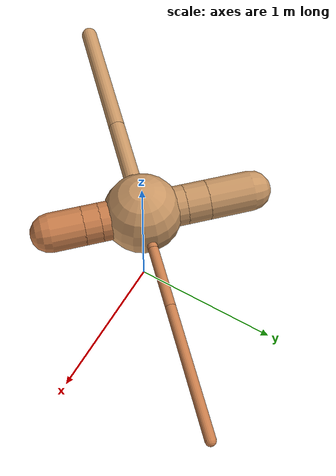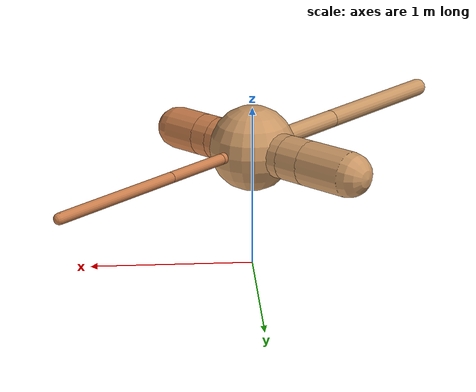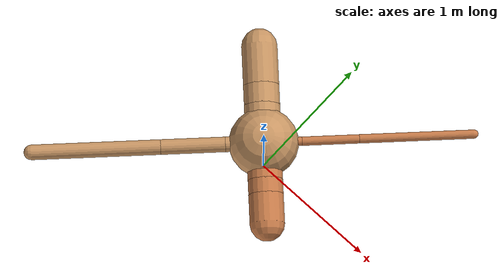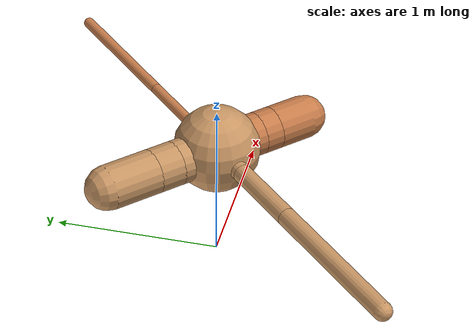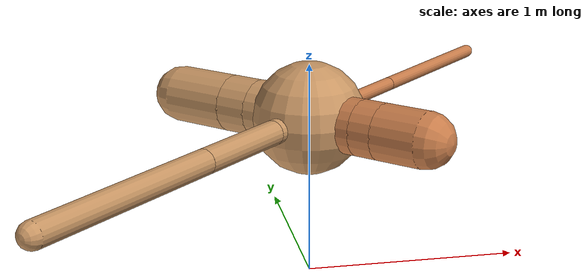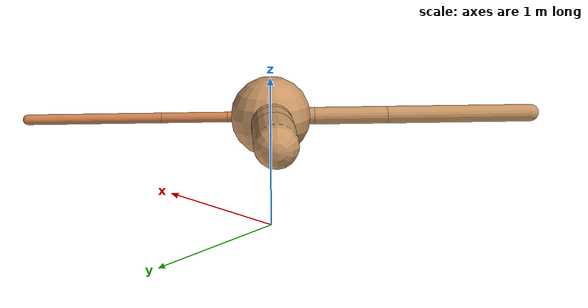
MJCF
<?xml version="1.0" ?>
<mujoco model="ant">

	<compiler angle="degree" coordinate="local" inertiafromgeom="true"/>

	<option integrator="RK4" timestep="0.01"/>

	<custom>

		<numeric data="0.0 0.0 0.55 1.0 0.0 0.0 0.0 0.0 1.0 0.0 -1.0 0.0 -1.0 0.0 1.0" name="init_qpos"/>

	</custom>

	<default>

		<joint armature="1" damping="1" limited="true"/>

		<geom conaffinity="0" condim="3" density="5.0" friction="1.5 0.1 0.1" margin="0.01" rgba="0.8 0.6 0.4 1"/>

	</default>

	<worldbody>

		<body name="torso" pos="0 0 0.75">

			<geom name="torso_geom" pos="0 0 0" size="0.26050399891564746" type="sphere"/>

			<!--joint armature="0" damping="0" limited="false" margin="0.01" name="root" pos="0 0 0" type="free"/-->

			<body name="front_left_leg" pos="0 0 0">

				<geom fromto="0 0 0 0.2 0.2 0" name="aux_1_geom" size="0.03307852371567443" type="capsule" rgba=".8 .5 .3 1"/>

				<body name="aux_1" pos="0.2 0.2 0">

					<joint axis="0 0 1" name="hip_1" pos="0.0 0.0 0.0" range="-40 40" type="hinge"/>

					<geom fromto="0 0 0 0.29955412672226256 0.29955412672226256 0" name="left_leg_geom" size="0.03307852371567443" type="capsule" rgba=".8 .5 .3 1"/>

					<body pos="0.29955412672226256 0.29955412672226256 0" name="front_left_foot">

						<joint axis="-1 1 0" name="ankle_1" pos="0.0 0.0 0.0" range="30 100" type="hinge"/>

						<geom fromto="0 0 0 0.5991082534445251 0.5991082534445251 0" name="left_ankle_geom" size="0.03307852371567443" type="capsule" rgba=".8 .5 .3 1"/>

					</body>

				</body>

			</body>

			<body name="front_right_leg" pos="0 0 0">

				<geom fromto="0 0 0 -0.2 0.2 0" name="aux_2_geom" size="0.1342470857479493" type="capsule"/>

				<body name="aux_2" pos="-0.2 0.2 0">

					<joint axis="0 0 1" name="hip_2" pos="0.0 0.0 0.0" range="-40 40" type="hinge"/>

					<geom fromto="0 0 0 -0.10719678428311002 0.10719678428311002 0" name="right_leg_geom" size="0.1342470857479493" type="capsule"/>

					<body pos="-0.10719678428311002 0.10719678428311002 0" name="front_right_foot">

						<joint axis="1 1 0" name="ankle_2" pos="0.0 0.0 0.0" range="-100 -30" type="hinge"/>

						<geom fromto="0 0 0 -0.21439356856622005 0.21439356856622005 0" name="right_ankle_geom" size="0.1342470857479493" type="capsule"/>

					</body>

				</body>

			</body>

			<body name="left_back_leg" pos="0 0 0">

				<geom fromto="0 0 0 -0.2 -0.2 0" name="aux_3_geom" size="0.05632588471691089" type="capsule"/>

				<body name="aux_3" pos="-0.2 -0.2 0">

					<joint axis="0 0 1" name="hip_3" pos="0.0 0.0 0.0" range="-40 40" type="hinge"/>

					<geom fromto="0 0 0 -0.3375611983984239 -0.3375611983984239 0" name="back_leg_geom" size="0.05632588471691089" type="capsule"/>

					<body pos="-0.3375611983984239 -0.3375611983984239 0" name="left_back_foot">

						<joint axis="-1 1 0" name="ankle_3" pos="0.0 0.0 0.0" range="-100 -30" type="hinge"/>

						<geom fromto="0 0 0 -0.6751223967968478 -0.6751223967968478 0" name="third_ankle_geom" size="0.05632588471691089" type="capsule"/>

					</body>

				</body>

			</body>

			<body name="right_back_leg" pos="0 0 0">

				<geom fromto="0 0 0 0.2 -0.2 0" name="aux_4_geom" size="0.1298946282409514" type="capsule" rgba=".8 .5 .3 1"/>

				<body name="aux_4" pos="0.2 -0.2 0">

					<joint axis="0 0 1" name="hip_4" pos="0.0 0.0 0.0" range="-40 40" type="hinge"/>

					<geom fromto="0 0 0 0.07753823011746207 -0.07753823011746207 0" name="rightback_leg_geom" size="0.1298946282409514" type="capsule" rgba=".8 .5 .3 1"/>

					<body pos="0.07753823011746207 -0.07753823011746207 0" name="right_back_foot">

						<joint axis="1 1 0" name="ankle_4" pos="0.0 0.0 0.0" range="30 100" type="hinge"/>

						<geom fromto="0 0 0 0.15507646023492414 -0.15507646023492414 0" name="fourth_ankle_geom" size="0.1298946282409514" type="capsule" rgba=".8 .5 .3 1"/>

					</body>

				</body>

			</body>

		</body>

	</worldbody>

	<actuator>

		<motor ctrllimited="true" ctrlrange="-1.0 1.0" joint="hip_4" gear="150"/>

		<motor ctrllimited="true" ctrlrange="-1.0 1.0" joint="ankle_4" gear="150"/>

		<motor ctrllimited="true" ctrlrange="-1.0 1.0" joint="hip_1" gear="150"/>

		<motor ctrllimited="true" ctrlrange="-1.0 1.0" joint="ankle_1" gear="150"/>

		<motor ctrllimited="true" ctrlrange="-1.0 1.0" joint="hip_2" gear="150"/>

		<motor ctrllimited="true" ctrlrange="-1.0 1.0" joint="ankle_2" gear="150"/>

		<motor ctrllimited="true" ctrlrange="-1.0 1.0" joint="hip_3" gear="150"/>

		<motor ctrllimited="true" ctrlrange="-1.0 1.0" joint="ankle_3" gear="150"/>

	</actuator>

</mujoco>
